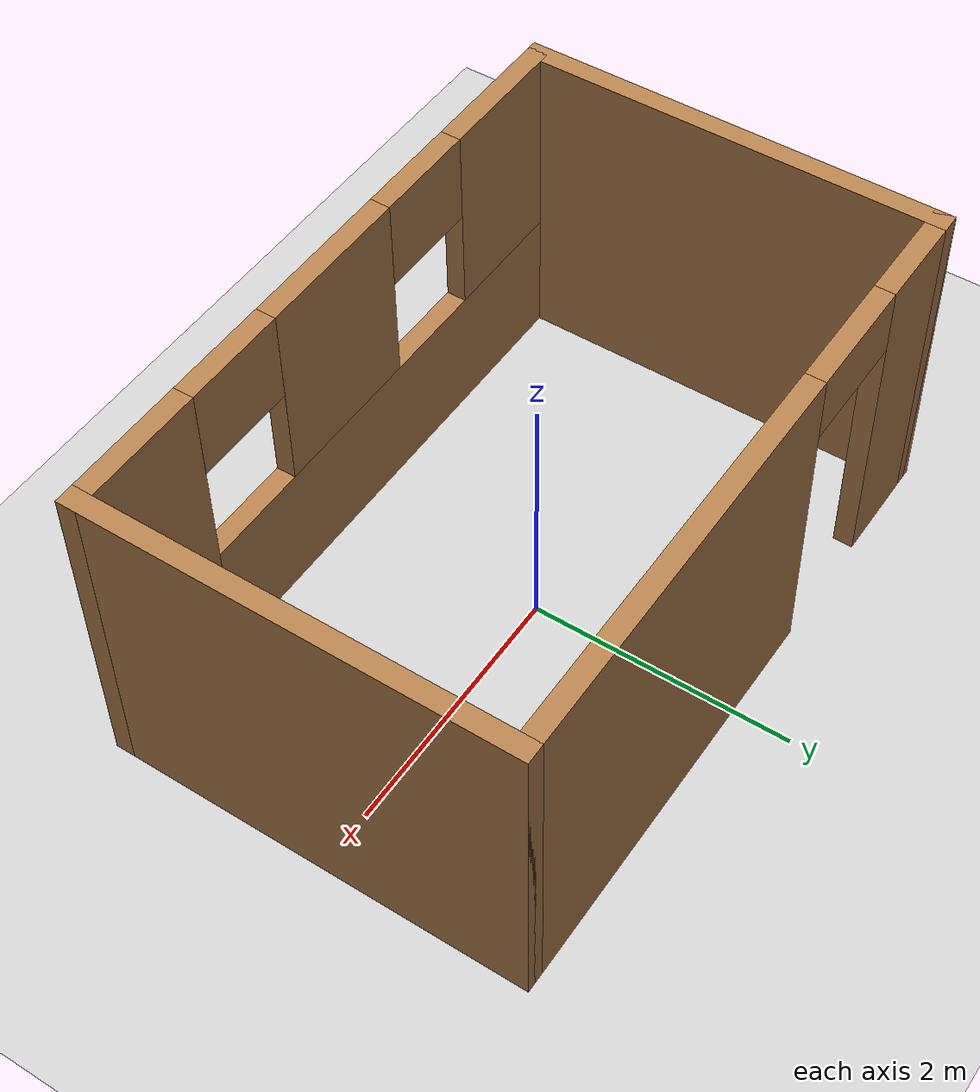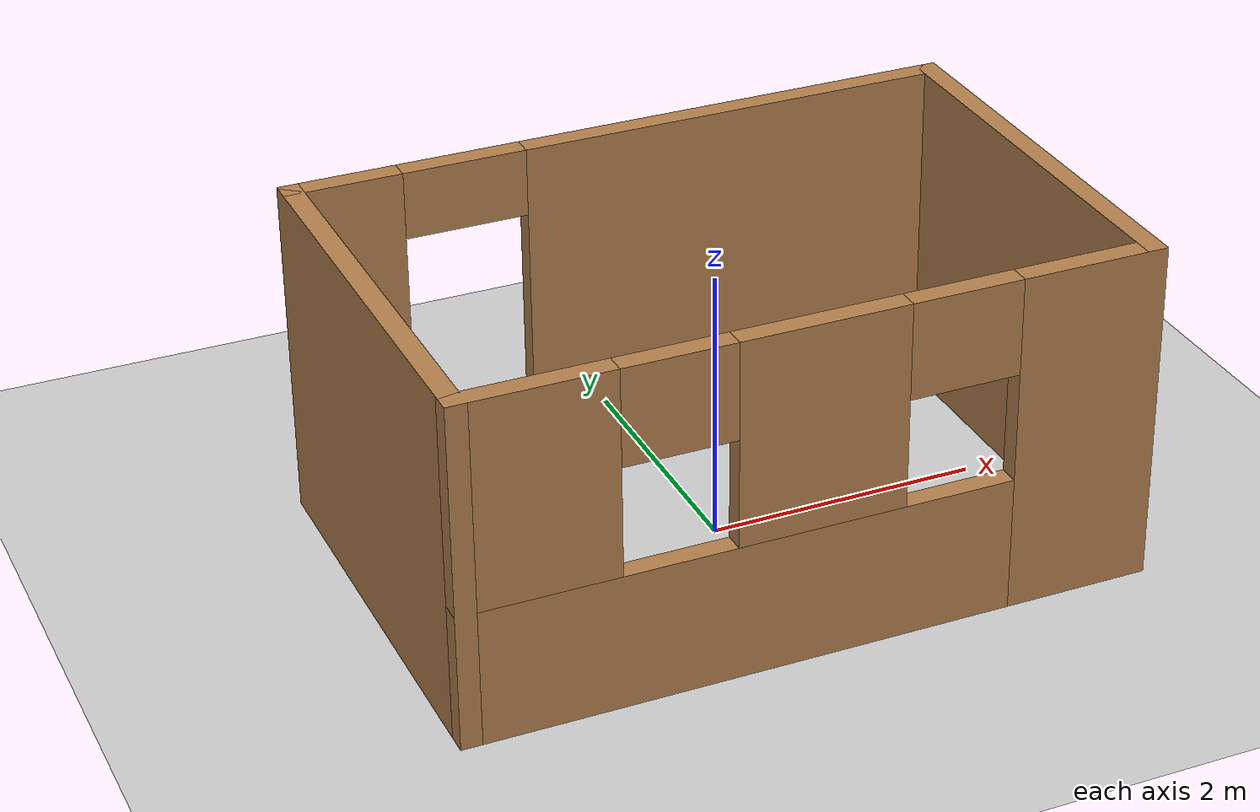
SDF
<sdf version="1.7">
 <world name="default">
  <light name="sun" type="directional">
   <pose>0 0 10 0 -0 0</pose>
   <diffuse>0.8 0.8 0.8 1</diffuse>
   <specular>0.2 0.2 0.2 1</specular>
   <attenuation>
    <range>1000</range>
    <constant>0.9</constant>
    <linear>0.01</linear>
    <quadratic>0.001</quadratic>
   </attenuation>
   <direction>-0.5 0.1 -0.9</direction>
   <spot><inner_angle>0</inner_angle><outer_angle>0</outer_angle><falloff>0</falloff></spot>
  </light>
  <model name="ground_plane">
   <static>1</static>
   <link name="link">
    <collision name="collision">
     <geometry><plane><normal>0 0 1</normal><size>100 100</size></plane></geometry>
     <surface>
      <contact><collide_bitmask>65535</collide_bitmask></contact>
      <friction><ode><mu>100</mu><mu2>50</mu2></ode></friction>
     </surface>
    </collision>
    <visual name="visual">
     <cast_shadows>0</cast_shadows>
     <geometry><plane><normal>0 0 1</normal><size>100 100</size></plane></geometry>
     <material>
      <script><uri>file://media/materials/scripts/gazebo.material</uri><name>Gazebo/Grey</name></script>
     </material>
    </visual>
   </link>
  </model>
  <gravity>0 0 -9.8</gravity>
  <magnetic_field>6e-06 2.3e-05 -4.2e-05</magnetic_field>
  <atmosphere type="adiabatic"/>
  <physics type="ode">
   <max_step_size>0.001</max_step_size>
   <real_time_factor>1</real_time_factor>
   <real_time_update_rate>1000</real_time_update_rate>
  </physics>
  <scene><ambient>0.4 0.4 0.4 1</ambient><background>0.7 0.7 0.7 1</background><shadows>1</shadows></scene>
  <spherical_coordinates>
   <surface_model>EARTH_WGS84</surface_model>
   <latitude_deg>0</latitude_deg>
   <longitude_deg>0</longitude_deg>
   <elevation>0</elevation>
   <heading_deg>0</heading_deg>
  </spherical_coordinates>
  <model name="dd">
   <pose>-0.035153 0.398996 0 0 -0 0</pose>
   <link name="Wall_0">
    <collision name="Wall_0_Collision">
     <geometry><box><size>3.25 0.15 2.5</size></box></geometry>
     <pose>0 0 1.25 0 -0 0</pose>
    </collision>
    <visual name="Wall_0_Visual">
     <pose>0 0 1.25 0 -0 0</pose>
     <geometry><box><size>3.25 0.15 2.5</size></box></geometry>
     <material>
      <script><uri>file://media/materials/scripts/gazebo.material</uri><name>Gazebo/Wood</name></script>
      <ambient>1 1 1 1</ambient>
     </material>
     <meta><layer>0</layer></meta>
    </visual>
    <pose>-2.425 -0.4625 0 0 -0 1.5708</pose>
   </link>
   <link name="Wall_1">
    <pose>-0 1.0875 0 0 -0 0</pose>
    <visual name="Wall_1_Visual_0">
     <pose>-2.0775 0 1.25 0 -0 0</pose>
     <geometry><box><size>0.845 0.15 2.5</size></box></geometry>
     <material>
      <script><uri>file://media/materials/scripts/gazebo.material</uri><name>Gazebo/Wood</name></script>
      <ambient>1 1 1 1</ambient>
     </material>
     <meta><layer>0</layer></meta>
    </visual>
    <collision name="Wall_1_Collision_0">
     <geometry><box><size>0.845 0.15 2.5</size></box></geometry>
     <pose>-2.0775 0 1.25 0 -0 0</pose>
    </collision>
    <visual name="Wall_1_Visual_1">
     <pose>0.8725 0 1.25 0 -0 0</pose>
     <geometry><box><size>3.255 0.15 2.5</size></box></geometry>
     <material>
      <script><uri>file://media/materials/scripts/gazebo.material</uri><name>Gazebo/Wood</name></script>
      <ambient>1 1 1 1</ambient>
     </material>
     <meta><layer>0</layer></meta>
    </visual>
    <collision name="Wall_1_Collision_1">
     <geometry><box><size>3.255 0.15 2.5</size></box></geometry>
     <pose>0.8725 0 1.25 0 -0 0</pose>
    </collision>
    <visual name="Wall_1_Visual_2">
     <pose>-1.205 0 2.25 0 -0 0</pose>
     <geometry><box><size>0.9 0.15 0.5</size></box></geometry>
     <material>
      <script><uri>file://media/materials/scripts/gazebo.material</uri><name>Gazebo/Wood</name></script>
      <ambient>1 1 1 1</ambient>
     </material>
     <meta><layer>0</layer></meta>
    </visual>
    <collision name="Wall_1_Collision_2">
     <geometry><box><size>0.9 0.15 0.5</size></box></geometry>
     <pose>-1.205 0 2.25 0 -0 0</pose>
    </collision>
   </link>
   <link name="Wall_2">
    <collision name="Wall_2_Collision">
     <geometry><box><size>3.25 0.15 2.5</size></box></geometry>
     <pose>0 0 1.25 0 -0 0</pose>
    </collision>
    <visual name="Wall_2_Visual">
     <pose>0 0 1.25 0 -0 0</pose>
     <geometry><box><size>3.25 0.15 2.5</size></box></geometry>
     <material>
      <script><uri>file://media/materials/scripts/gazebo.material</uri><name>Gazebo/Wood</name></script>
      <ambient>1 1 1 1</ambient>
     </material>
     <meta><layer>0</layer></meta>
    </visual>
    <pose>2.425 -0.4625 0 0 -0 -1.5708</pose>
   </link>
   <link name="Wall_3">
    <pose>-0 -2.0125 0 0 -0 3.14159</pose>
    <visual name="Wall_3_Visual_0">
     <pose>-1.9675 0 1.25 0 -0 0</pose>
     <geometry><box><size>1.065 0.15 2.5</size></box></geometry>
     <material>
      <script><uri>file://media/materials/scripts/gazebo.material</uri><name>Gazebo/Wood</name></script>
      <ambient>1 1 1 1</ambient>
     </material>
     <meta><layer>0</layer></meta>
    </visual>
    <collision name="Wall_3_Collision_0">
     <geometry><box><size>1.065 0.15 2.5</size></box></geometry>
     <pose>-1.9675 0 1.25 0 -0 0</pose>
    </collision>
    <visual name="Wall_3_Visual_1">
     <pose>0.5325 0 0.5 0 -0 0</pose>
     <geometry><box><size>3.935 0.15 1</size></box></geometry>
     <material>
      <script><uri>file://media/materials/scripts/gazebo.material</uri><name>Gazebo/Wood</name></script>
      <ambient>1 1 1 1</ambient>
     </material>
     <meta><layer>0</layer></meta>
    </visual>
    <collision name="Wall_3_Collision_1">
     <geometry><box><size>3.935 0.15 1</size></box></geometry>
     <pose>0.5325 0 0.5 0 -0 0</pose>
    </collision>
    <visual name="Wall_3_Visual_2">
     <pose>-0.03367 0 1.75 0 -0 0</pose>
     <geometry><box><size>1.20266 0.15 1.5</size></box></geometry>
     <material>
      <script><uri>file://media/materials/scripts/gazebo.material</uri><name>Gazebo/Wood</name></script>
      <ambient>1 1 1 1</ambient>
     </material>
     <meta><layer>0</layer></meta>
    </visual>
    <collision name="Wall_3_Collision_2">
     <geometry><box><size>1.20266 0.15 1.5</size></box></geometry>
     <pose>-0.03367 0 1.75 0 -0 0</pose>
    </collision>
    <visual name="Wall_3_Visual_3">
     <pose>1.93383 0 1.75 0 -0 0</pose>
     <geometry><box><size>1.13234 0.15 1.5</size></box></geometry>
     <material>
      <script><uri>file://media/materials/scripts/gazebo.material</uri><name>Gazebo/Wood</name></script>
      <ambient>1 1 1 1</ambient>
     </material>
     <meta><layer>0</layer></meta>
    </visual>
    <collision name="Wall_3_Collision_3">
     <geometry><box><size>1.13234 0.15 1.5</size></box></geometry>
     <pose>1.93383 0 1.75 0 -0 0</pose>
    </collision>
    <visual name="Wall_3_Visual_4">
     <pose>-1.035 0 2.15 0 -0 0</pose>
     <geometry><box><size>0.8 0.15 0.7</size></box></geometry>
     <material>
      <script><uri>file://media/materials/scripts/gazebo.material</uri><name>Gazebo/Wood</name></script>
      <ambient>1 1 1 1</ambient>
     </material>
     <meta><layer>0</layer></meta>
    </visual>
    <collision name="Wall_3_Collision_4">
     <geometry><box><size>0.8 0.15 0.7</size></box></geometry>
     <pose>-1.035 0 2.15 0 -0 0</pose>
    </collision>
    <visual name="Wall_3_Visual_5">
     <pose>0.96766 0 2.15 0 -0 0</pose>
     <geometry><box><size>0.8 0.15 0.7</size></box></geometry>
     <material>
      <script><uri>file://media/materials/scripts/gazebo.material</uri><name>Gazebo/Wood</name></script>
      <ambient>1 1 1 1</ambient>
     </material>
     <meta><layer>0</layer></meta>
    </visual>
    <collision name="Wall_3_Collision_5">
     <geometry><box><size>0.8 0.15 0.7</size></box></geometry>
     <pose>0.96766 0 2.15 0 -0 0</pose>
    </collision>
   </link>
   <static>1</static>
  </model>
 </world>
</sdf>
